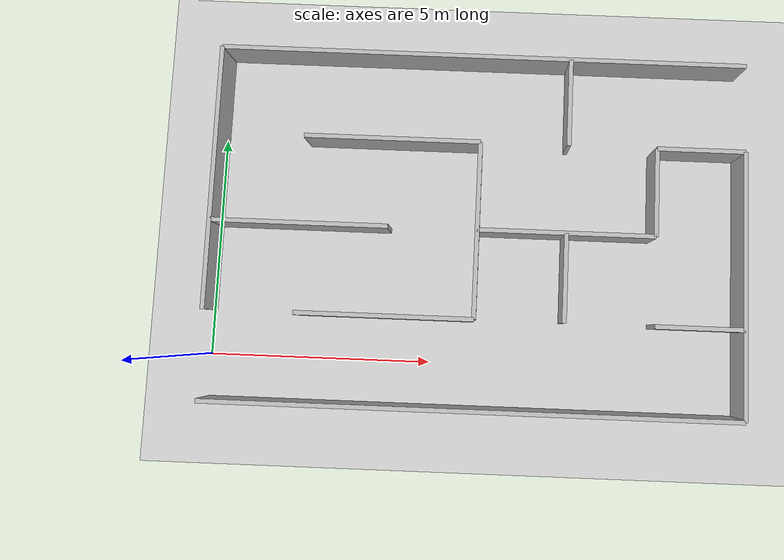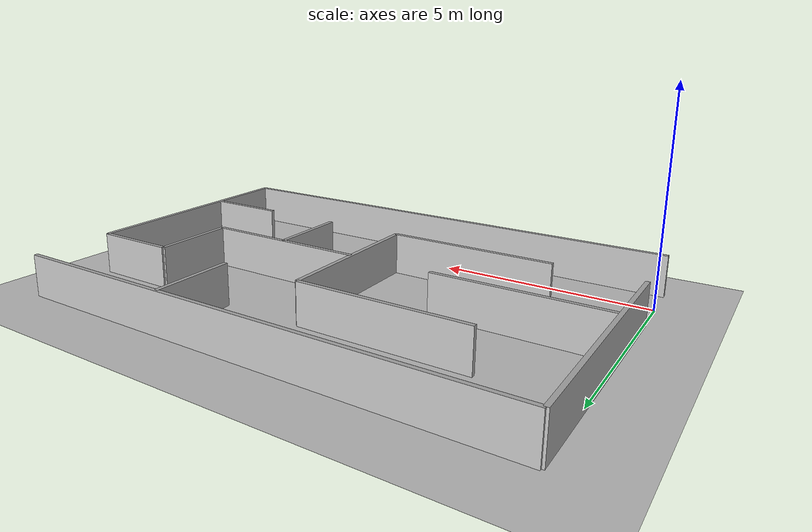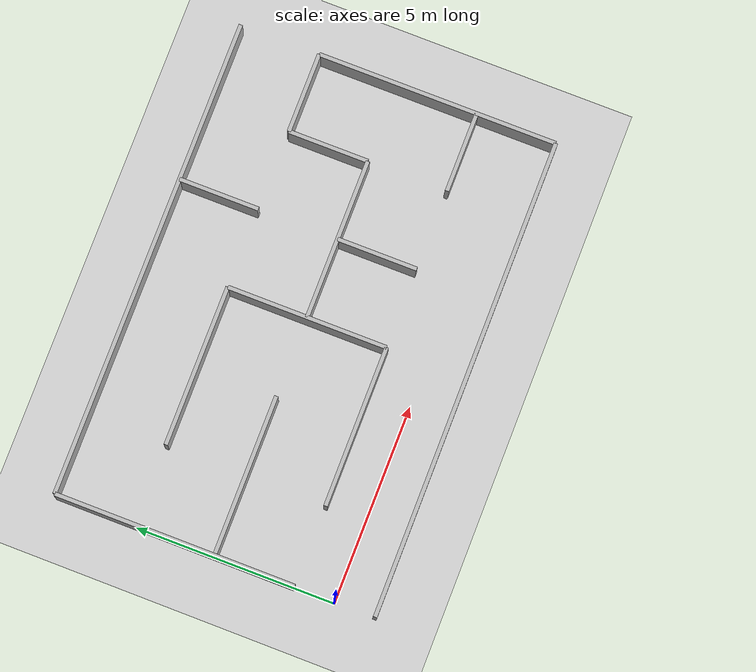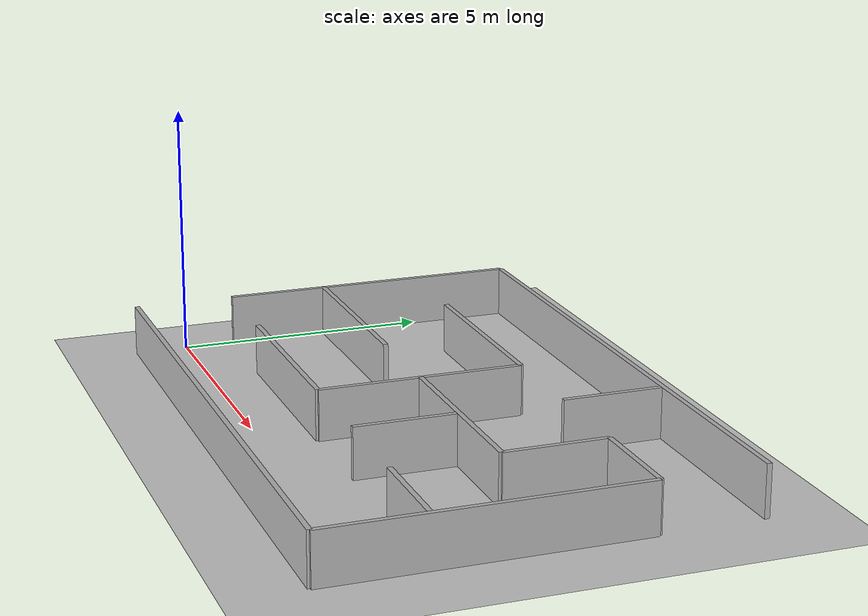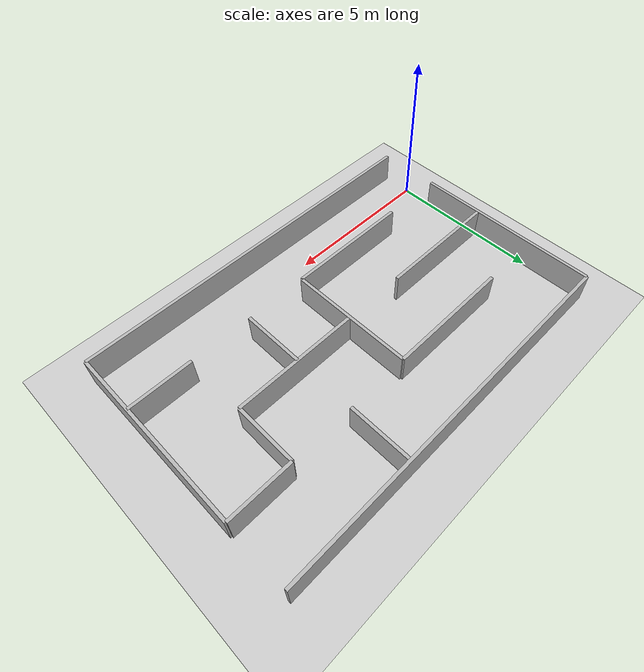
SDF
<?xml version="1.0" ?>
<sdf version="1.4">
  <world name="default">
    <include>
      <uri>model://ground_plane</uri>
    </include>
    <include>
      <uri>model://sun</uri>
    </include>
    <model name="box">
      <static>1</static>
      <pose>6 7 0.5 0 0 0</pose>
      <link name="link">
        <collision name="collision">
          <geometry>
            <box>
              <size>12 0.1 1</size>
            </box>
          </geometry>
        </collision>
        <visual name="visual">
          <geometry>
            <box>
              <size>12 0.1 1</size>
            </box>
          </geometry>
          <material>
            <script>
              <uri>model://brick_box_3x1x3/materials/scripts</uri>
              <uri>model://brick_box_3x1x3/materials/textures</uri>
              <name>BrickBox/Diffuse</name>
            </script>
          </material>
        </visual>
        <inertial>
          <mass value="100000"/>
          <inertia ixx="1.0" ixy="0.0" ixz="0.0" iyy="1.0" iyz="0.0" izz="1.0"/>
        </inertial>
      </link>
    </model>
    <model name="box1">
      <static>1</static>
      <pose>6 -1 0.5 0 0 0</pose>
      <link name="link">
        <collision name="collision">
          <geometry>
            <box>
              <size>12 0.1 1</size>
            </box>
          </geometry>
        </collision>
        <visual name="visual">
          <geometry>
            <box>
              <size>12 0.1 1</size>
            </box>
          </geometry>
          <material>
            <script>
              <uri>model://brick_box_3x1x3/materials/scripts</uri>
              <uri>model://brick_box_3x1x3/materials/textures</uri>
              <name>BrickBox/Diffuse</name>
            </script>
          </material>
        </visual>
        <inertial>
          <mass value="100000"/>
          <inertia ixx="1.0" ixy="0.0" ixz="0.0" iyy="1.0" iyz="0.0" izz="1.0"/>
        </inertial>
      </link>
    </model>
    <model name="box2">
      <pose>4 1 0.5 0 0 0</pose>
      <static>1</static>
      <link name="link">
        <collision name="collision">
          <geometry>
            <box>
              <size>4 0.1 1</size>
            </box>
          </geometry>
        </collision>
        <visual name="visual">
          <geometry>
            <box>
              <size>4 0.1 1</size>
            </box>
          </geometry>
          <material>
            <script>
              <uri>model://brick_box_3x1x3/materials/scripts</uri>
              <uri>model://brick_box_3x1x3/materials/textures</uri>
              <name>BrickBox/Diffuse</name>
            </script>
          </material>
        </visual>
      </link>
    </model>
    <model name="box3">
      <pose>4 5 0.5 0 0 0</pose>
      <static>1</static>
      <link name="link">
        <collision name="collision">
          <geometry>
            <box>
              <size>4 0.1 1</size>
            </box>
          </geometry>
        </collision>
        <visual name="visual">
          <geometry>
            <box>
              <size>4 0.1 1</size>
            </box>
          </geometry>
          <material>
            <script>
              <uri>model://brick_box_3x1x3/materials/scripts</uri>
              <uri>model://brick_box_3x1x3/materials/textures</uri>
              <name>BrickBox/Diffuse</name>
            </script>
          </material>
        </visual>
      </link>
    </model>
    <model name="box4">
      <static>1</static>
      <pose>2 3 0.5 0 0 0</pose>
      <link name="link">
        <collision name="collision">
          <geometry>
            <box>
              <size>4 0.1 1</size>
            </box>
          </geometry>
        </collision>
        <visual name="visual">
          <geometry>
            <box>
              <size>4 0.1 1</size>
            </box>
          </geometry>
          <material>
            <script>
              <uri>model://brick_box_3x1x3/materials/scripts</uri>
              <uri>model://brick_box_3x1x3/materials/textures</uri>
              <name>BrickBox/Diffuse</name>
            </script>
          </material>
        </visual>
      </link>
    </model>
    <model name="box5">
      <static>1</static>
      <pose>8 3 0.5 0 0 0</pose>
      <link name="link">
        <collision name="collision">
          <geometry>
            <box>
              <size>4 0.1 1</size>
            </box>
          </geometry>
        </collision>
        <visual name="visual">
          <geometry>
            <box>
              <size>4 0.1 1</size>
            </box>
          </geometry>
          <material>
            <script>
              <uri>model://brick_box_3x1x3/materials/scripts</uri>
              <uri>model://brick_box_3x1x3/materials/textures</uri>
              <name>BrickBox/Diffuse</name>
            </script>
          </material>
        </visual>
      </link>
    </model>
    <model name="box6">
      <static>1</static>
      <pose>11 1 0.5 0 0 0</pose>
      <link name="link">
        <collision name="collision">
          <geometry>
            <box>
              <size>2 0.1 1</size>
            </box>
          </geometry>
        </collision>
        <visual name="visual">
          <geometry>
            <box>
              <size>2 0.1 1</size>
            </box>
          </geometry>
          <material>
            <script>
              <uri>model://brick_box_3x1x3/materials/scripts</uri>
              <uri>model://brick_box_3x1x3/materials/textures</uri>
              <name>BrickBox/Diffuse</name>
            </script>
          </material>
        </visual>
      </link>
    </model>
    <model name="box7">
      <static>1</static>
      <pose>11 5 0.5 0 0 0</pose>
      <link name="link">
        <collision name="collision">
          <geometry>
            <box>
              <size>2 0.1 1</size>
            </box>
          </geometry>
        </collision>
        <visual name="visual">
          <geometry>
            <box>
              <size>2 0.1 1</size>
            </box>
          </geometry>
          <material>
            <script>
              <uri>model://brick_box_3x1x3/materials/scripts</uri>
              <uri>model://brick_box_3x1x3/materials/textures</uri>
              <name>BrickBox/Diffuse</name>
            </script>
          </material>
        </visual>
      </link>
    </model>
    <model name="box8">
      <static>1</static>
      <pose>0 4 0.5 0 0 0</pose>
      <link name="link">
        <collision name="collision">
          <geometry>
            <box>
              <size>0.1 6 1</size>
            </box>
          </geometry>
        </collision>
        <visual name="visual">
          <geometry>
            <box>
              <size>0.1 6 1</size>
            </box>
          </geometry>
          <material>
            <script>
              <uri>model://brick_box_3x1x3/materials/scripts</uri>
              <uri>model://brick_box_3x1x3/materials/textures</uri>
              <name>BrickBox/Diffuse</name>
            </script>
          </material>
        </visual>
      </link>
    </model>
    <model name="box9">
      <static>1</static>
      <pose>12 2 0.5 0 0 0</pose>
      <link name="link">
        <collision name="collision">
          <geometry>
            <box>
              <size>0.1 6 1</size>
            </box>
          </geometry>
        </collision>
        <visual name="visual">
          <geometry>
            <box>
              <size>0.1 6 1</size>
            </box>
          </geometry>
          <material>
            <script>
              <uri>model://brick_box_3x1x3/materials/scripts</uri>
              <uri>model://brick_box_3x1x3/materials/textures</uri>
              <name>BrickBox/Diffuse</name>
            </script>
          </material>
        </visual>
      </link>
    </model>
    <model name="box10">
      <static>1</static>
      <pose>6 3 0.5 0 0 0</pose>
      <link name="link">
        <collision name="collision">
          <geometry>
            <box>
              <size>0.1 4 1</size>
            </box>
          </geometry>
        </collision>
        <visual name="visual">
          <geometry>
            <box>
              <size>0.1 4 1</size>
            </box>
          </geometry>
          <material>
            <script>
              <uri>model://brick_box_3x1x3/materials/scripts</uri>
              <uri>model://brick_box_3x1x3/materials/textures</uri>
              <name>BrickBox/Diffuse</name>
            </script>
          </material>
        </visual>
      </link>
    </model>
    <model name="box11">
      <static>1</static>
      <pose>8 6 0.5 0 0 0</pose>
      <link name="link">
        <collision name="collision">
          <geometry>
            <box>
              <size>0.1 2 1</size>
            </box>
          </geometry>
        </collision>
        <visual name="visual">
          <geometry>
            <box>
              <size>0.1 2 1</size>
            </box>
          </geometry>
          <material>
            <script>
              <uri>model://brick_box_3x1x3/materials/scripts</uri>
              <uri>model://brick_box_3x1x3/materials/textures</uri>
              <name>BrickBox/Diffuse</name>
            </script>
          </material>
        </visual>
      </link>
    </model>
    <model name="box12">
      <static>1</static>
      <pose>8 2 0.5 0 0 0</pose>
      <link name="link">
        <collision name="collision">
          <geometry>
            <box>
              <size>0.1 2 1</size>
            </box>
          </geometry>
        </collision>
        <visual name="visual">
          <geometry>
            <box>
              <size>0.1 2 1</size>
            </box>
          </geometry>
          <material>
            <script>
              <uri>model://brick_box_3x1x3/materials/scripts</uri>
              <uri>model://brick_box_3x1x3/materials/textures</uri>
              <name>BrickBox/Diffuse</name>
            </script>
          </material>
        </visual>
      </link>
    </model>
    <model name="box13">
      <static>1</static>
      <pose>10 4 0.5 0 0 0</pose>
      <link name="link">
        <collision name="collision">
          <geometry>
            <box>
              <size>0.1 2 1</size>
            </box>
          </geometry>
        </collision>
        <visual name="visual">
          <geometry>
            <box>
              <size>0.1 2 1</size>
            </box>
          </geometry>
          <material>
            <script>
              <uri>model://brick_box_3x1x3/materials/scripts</uri>
              <uri>model://brick_box_3x1x3/materials/textures</uri>
              <name>BrickBox/Diffuse</name>
            </script>
          </material>
        </visual>
      </link>
    </model>
  </world>
</sdf>
